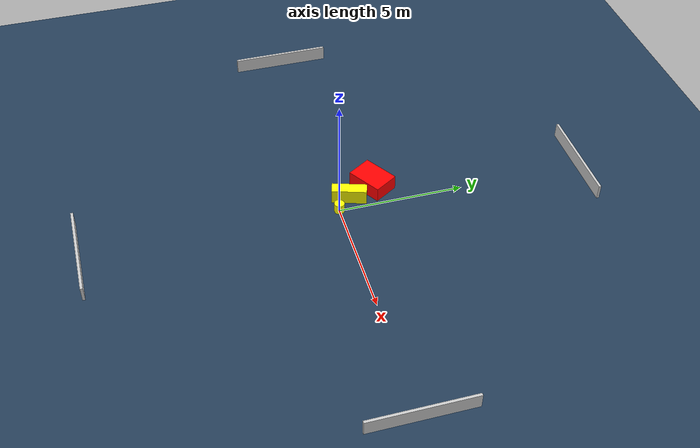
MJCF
<?xml version="1.0" ?>
<mujoco model="generated_environment">
  <option timestep="0.01" integrator="RK4" cone="elliptic"/>
  <default>
    <geom density="1"/>
  </default>
  <asset>
    <texture builtin="gradient" height="3072" name="skybox" rgb1="0.3 0.5 0.7" rgb2="0 0 0" type="skybox" width="512"/>
    <texture builtin="checker" height="300" name="groundplane" rgb1="0.2 0.3 0.4" rgb2="0.1 0.2 0.3" type="2d" width="300"/>
    <material name="groundplane" reflectance="0.2" texrepeat="5 5" texture="groundplane"/>
  </asset>
  <worldbody>
    <light dir="0 0 -1" directional="true" pos="0 0 1.5"/>
    <geom condim="3" friction="0.5 0.005 0.001" material="groundplane" name="floor" pos="0 0 0" size="0 0 0.05" type="plane"/>
    <body name="walls">
      <geom name="wall_1" condim="4" pos="-10.0 0.0 0.3" rgba="0.800000011920929 0.800000011920929 0.800000011920929 1.0" size="0.05 2.0 0.3" type="box"/>
      <geom name="wall_2" condim="4" pos="10.0 0.0 0.3" rgba="0.800000011920929 0.800000011920929 0.800000011920929 1.0" size="0.05 2.0 0.3" type="box"/>
      <geom name="wall_3" condim="4" pos="0.0 -10.0 0.3" rgba="0.800000011920929 0.800000011920929 0.800000011920929 1.0" size="2.0 0.05 0.3" type="box"/>
      <geom name="wall_4" condim="4" pos="0.0 10.0 0.3" rgba="0.800000011920929 0.800000011920929 0.800000011920929 1.0" size="2.0 0.05 0.3" type="box"/>
    </body>
    <body name="robot">
      <joint name="joint_x" type="slide" pos="0 0 0" axis="1 0 0"/>
      <joint name="joint_y" type="slide" pos="0 0 0" axis="0 1 0"/>
      <geom name="robot" type="cylinder" pos="0.0 0.0 0.2" size="0.2 0.2 0.0" mass="5.0" friction="1.0 0.005 0.0001" condim="4" rgba="1.0 1.0 0.0 1.0"/>
    </body>
    <body name="obstacle_1_movable">
      <geom name="obstacle_1_movable" condim="4" pos="-0.5387042551715358 0.5468480247922193 0.3" euler="0 0 251.90640708698274" friction="0.0 0.005 0.001" rgba="1.0 1.0 0.0 1.0" size="0.6874494529416004 0.23144016604186246 0.3" type="box" mass="0.1"/>
      <joint type="free"/>
    </body>
    <body name="obstacle_2_static">
      <geom name="obstacle_2_static" condim="4" pos="-1.039969132949948 1.6413717577060127 0.3" euler="0 0 121.77692079253947" friction="0.0 0.005 0.001" rgba="1.0 0.0 0.0 1.0" size="0.5273162457565777 0.7366551378963173 0.3" type="box"/>
    </body>
  </worldbody>
  <actuator>
    <motor name="actuator_x" joint="joint_x" gear="1" ctrlrange="-1 1"/>
    <motor name="actuator_y" joint="joint_y" gear="1" ctrlrange="-1 1"/>
  </actuator>
</mujoco>
